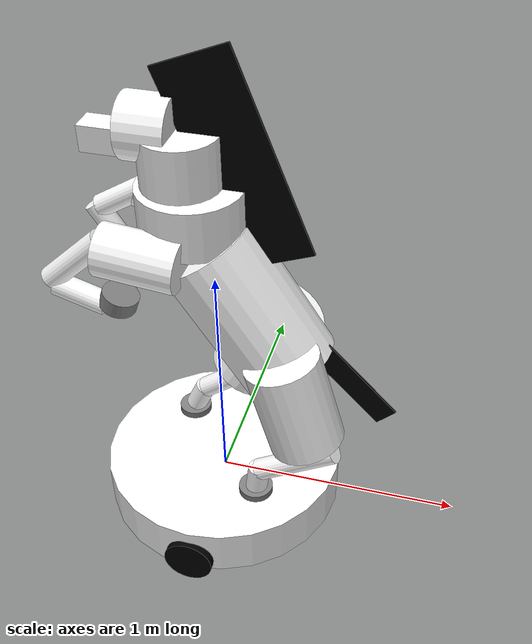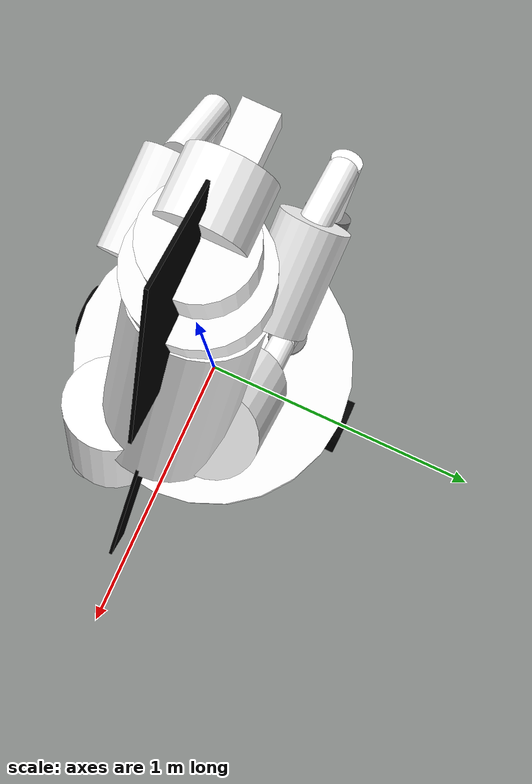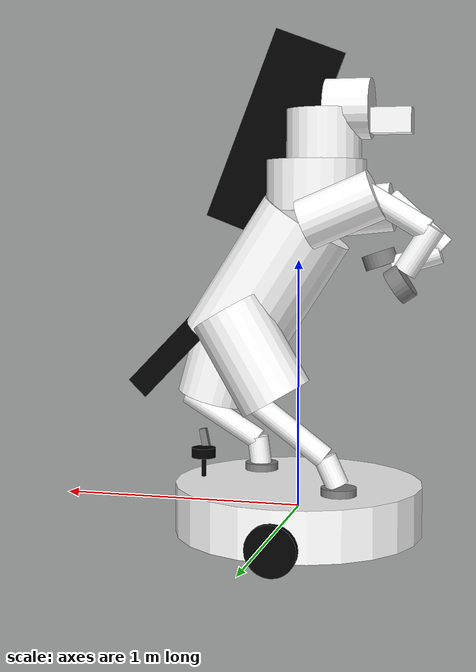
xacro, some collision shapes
<?xml version="1.0" ?>
<robot name='robot' xmlns:xacro="http://ros.org/wiki/xacro">

    <xacro:include filename="$(find sensors)/urdf/gazebo.urdf.xacro" />
    <xacro:include filename="$(find sensors)/urdf/lidar.urdf.xacro" />
    <xacro:include filename="$(find sensors)/urdf/depth.urdf.xacro" />

<!-- Define robot color -->
  <material name="grey">
    <color rgba="0.5 0.5 0.5 1"/>
  </material>

  <material name="white">
    <color rgba="1 1 1 1"/>
  </material>

  <material name="black">
    <color rgba="0 0 0 1"/>
  </material>

  <!-- Robot Base -->
  <link name="base_link">
    <visual>
      <geometry>
        <cylinder radius="0.5" length="0.2"/>
      </geometry>
      <material name="white"/>
    </visual>

    <collision>
      <geometry>
        <cylinder radius="0.5" length="0.2"/>
      </geometry>
    </collision>

    <inertial>
      <mass value="2"/>
      <inertia ixx="0.13" ixy="0.0" ixz="0.0" iyy="0.13" iyz="0.0" izz="0.25"/>
    </inertial>
  </link>

  <!-- Robot Footprint -->
  <link name="base_footprint"/>

  <joint name="base_joint" type="fixed">
    <parent link="base_link"/>
    <child link="base_footprint"/>
    <origin xyz="0.0 0.0 -0.15" rpy="0 0 0"/>
  </joint>
  <!-- Horse -->

  <!--Legs-->

  <!-- Right  -->
  <!-- Hoof-->
  <link name="right_hoof">
    <visual>
      <origin xyz="0 0 0" rpy="1.57 0 0"/>
      <geometry>
          <cylinder radius="0.07" length="0.06"/>
      </geometry>
      <material name="grey"/>
    </visual>

   <collision>
     <origin xyz="0 0 0" rpy="1.57 0 0"/>
     <geometry>
          <cylinder radius="0.07" length="0.06"/>
     </geometry>
   </collision>
<!-- todo -->
   <inertial>
     <mass value="0.001"/>
     <inertia ixx="0.001" ixy="0.0" ixz="0.0" iyy="0.001" iyz="0.0" izz="0.002"/>
   </inertial>
  </link>

  <joint name="right_hoof_joint" type="fixed">
    <parent link="base_link"/>
    <child link="right_hoof"/>
    <origin xyz="-0.2 0.2 0.1" rpy="1.57 0 0"/>
    <axis xyz="0 0 0"/>
  </joint>

  <!-- foot-->
  <link name="right_foot">
    <visual>
      <origin xyz="0 0 0" rpy="1.57 0 0"/>
      <geometry>
          <cylinder radius="0.045" length="0.12"/>
      </geometry>
      <material name="white"/>
    </visual>

   <collision>
     <origin xyz="0 0 0" rpy="1.57 0 0"/>
     <geometry>
          <cylinder radius="0.045" length="0.12"/>
     </geometry>
   </collision>
<!-- todo -->
   <inertial>
     <mass value="0.001"/>
     <inertia ixx="0.001" ixy="0.0" ixz="0.0" iyy="0.001" iyz="0.0" izz="0.002"/>
   </inertial>
  </link>

  <joint name="right_foot_joint" type="fixed">
    <parent link="base_link"/>
    <child link="right_foot"/>
    <origin xyz="-0.17 0.2 0.19" rpy="2.0 0 1.57"/>
    <axis xyz="0 0 0"/>
  </joint>

  <!-- knee-->
  <link name="right_knee">
    <visual>
      <origin xyz="0 0 0" rpy="1.57 0 0"/>
      <geometry>
          <cylinder radius="0.045" length="0.36"/>
      </geometry>
      <material name="white"/>
    </visual>

   <collision>
     <origin xyz="0 0 0" rpy="1.57 0 0"/>
     <geometry>
          <cylinder radius="0.045" length="0.36"/>
     </geometry>
   </collision>
<!-- todo -->
   <inertial>
     <mass value="0.001"/>
     <inertia ixx="0.001" ixy="0.0" ixz="0.0" iyy="0.001" iyz="0.0" izz="0.002"/>
   </inertial>
  </link>

  <joint name="right_knee_joint" type="fixed">
    <parent link="base_link"/>
    <child link="right_knee"/>
    <origin xyz="0 0.2 0.35" rpy="2.5 0 1.57"/>
    <axis xyz="0 0 0"/>
  </joint>

  <!-- hip-->
  <link name="right_hip">
    <visual>
      <origin xyz="0 0 0" rpy="1.57 0 0"/>
      <geometry>
          <cylinder radius="0.15" length="0.4"/>
      </geometry>
      <material name="white"/>
    </visual>

   <collision>
     <origin xyz="0 0 0" rpy="1.57 0 0"/>
     <geometry>
          <cylinder radius="0.15" length="0.4"/>
     </geometry>
   </collision>
<!-- todo -->
   <inertial>
     <mass value="0.001"/>
     <inertia ixx="0.001" ixy="0.0" ixz="0.0" iyy="0.001" iyz="0.0" izz="0.002"/>
   </inertial>
  </link>

  <joint name="right_hip_joint" type="fixed">
    <parent link="base_link"/>
    <child link="right_hip"/>
    <origin xyz="0.16 0.15 0.63" rpy="2.1 0 1.57"/>
    <axis xyz="0 0 0"/>
  </joint>

  <!-- Left  -->
  <!-- Hoof-->
  <link name="left_hoof">
    <visual>
      <origin xyz="0 0 0" rpy="1.57 0 0"/>
      <geometry>
          <cylinder radius="0.07" length="0.06"/>
      </geometry>
      <material name="grey"/>
    </visual>

   <collision>
     <origin xyz="0 0 0" rpy="1.57 0 0"/>
     <geometry>
          <cylinder radius="0.07" length="0.06"/>
     </geometry>
   </collision>
<!-- todo -->
   <inertial>
     <mass value="0.001"/>
     <inertia ixx="0.001" ixy="0.0" ixz="0.0" iyy="0.001" iyz="0.0" izz="0.002"/>
   </inertial>
  </link>

  <joint name="left_hoof_joint" type="fixed">
    <parent link="base_link"/>
    <child link="left_hoof"/>
    <origin xyz="0.2 -0.2 0.1" rpy="1.57 0 0"/>
    <axis xyz="0 0 0"/>
  </joint>

  <!-- foot-->
  <link name="left_foot">
    <visual>
      <origin xyz="0 0 0" rpy="1.57 0 0"/>
      <geometry>
          <cylinder radius="0.045" length="0.12"/>
      </geometry>
      <material name="white"/>
    </visual>

   <collision>
     <origin xyz="0 0 0" rpy="1.57 0 0"/>
     <geometry>
          <cylinder radius="0.045" length="0.12"/>
     </geometry>
   </collision>
<!-- todo -->
   <inertial>
     <mass value="0.001"/>
     <inertia ixx="0.001" ixy="0.0" ixz="0.0" iyy="0.001" iyz="0.0" izz="0.002"/>
   </inertial>
  </link>

  <joint name="left_foot_joint" type="fixed">
    <parent link="base_link"/>
    <child link="left_foot"/>
    <origin xyz="0.21 -0.2 0.18" rpy="1.7 0 1.57"/>
    <axis xyz="0 0 0"/>
  </joint>

  <!-- knee-->
  <link name="left_knee">
    <visual>
      <origin xyz="0 0 0" rpy="1.57 0 0"/>
      <geometry>
          <cylinder radius="0.045" length="0.36"/>
      </geometry>
      <material name="white"/>
    </visual>

   <collision>
     <origin xyz="0 0 0" rpy="1.57 0 0"/>
     <geometry>
          <cylinder radius="0.045" length="0.36"/>
     </geometry>
   </collision>
<!-- todo -->
   <inertial>
     <mass value="0.001"/>
     <inertia ixx="0.001" ixy="0.0" ixz="0.0" iyy="0.001" iyz="0.0" izz="0.002"/>
   </inertial>
  </link>

  <joint name="left_knee_joint" type="fixed">
    <parent link="base_link"/>
    <child link="left_knee"/>
    <origin xyz="0.37 -0.2 0.32" rpy="2.6 0 1.57"/>
    <axis xyz="0 0 0"/>
  </joint>

  <!-- hip-->
  <link name="left_hip">
    <visual>
      <origin xyz="0 0 0" rpy="1.57 0 0"/>
      <geometry>
          <cylinder radius="0.15" length="0.4"/>
      </geometry>
      <material name="white"/>
    </visual>

   <collision>
     <origin xyz="0 0 0" rpy="1.57 0 0"/>
     <geometry>
          <cylinder radius="0.15" length="0.4"/>
     </geometry>
   </collision>
<!-- todo -->
   <inertial>
     <mass value="0.001"/>
     <inertia ixx="0.001" ixy="0.0" ixz="0.0" iyy="0.001" iyz="0.0" izz="0.002"/>
   </inertial>
  </link>

  <joint name="left_hip_joint" type="fixed">
    <parent link="base_link"/>
    <child link="left_hip"/>
    <origin xyz="0.35 -0.15 0.6" rpy="1.3 0 1.57"/>
    <axis xyz="0 0 0"/>
  </joint>

<!-- Body -->
  <link name="body">
    <visual>
      <origin xyz="0 0 0" rpy="1.57 0 0"/>
      <geometry>
          <cylinder radius="0.2" length="0.6"/>
      </geometry>
      <material name="white"/>
    </visual>

   <collision>
     <origin xyz="0 0 0" rpy="1.57 0 0"/>
     <geometry>
          <cylinder radius="0.2" length="0.6"/>
     </geometry>
   </collision>
<!-- todo -->
   <inertial>
     <mass value="0.001"/>
     <inertia ixx="0.001" ixy="0.0" ixz="0.0" iyy="0.001" iyz="0.0" izz="0.002"/>
   </inertial>
  </link>

  <joint name="body_joint" type="fixed">
    <parent link="base_link"/>
    <child link="body"/>
    <origin xyz="0.13 0 0.9" rpy="1.0 0 1.57"/>
    <axis xyz="0 0 0"/>
  </joint>

  <!--Hands-->

  <!-- Left  -->
  <!--Shoulder-->
  <link name="left_shoulder">
    <visual>
      <origin xyz="0 0 0" rpy="1.57 0 0"/>
      <geometry>
          <cylinder radius="0.1" length="0.3"/>
      </geometry>
      <material name="white"/>
    </visual>

   <collision>
     <origin xyz="0 0 0" rpy="1.57 0 0"/>
     <geometry>
          <cylinder radius="0.11" length="0.3"/>
     </geometry>
   </collision>
<!-- todo -->
   <inertial>
     <mass value="0.001"/>
     <inertia ixx="0.001" ixy="0.0" ixz="0.0" iyy="0.001" iyz="0.0" izz="0.002"/>
   </inertial>
  </link>

  <joint name="left_shoulder_joint" type="fixed">
    <parent link="base_link"/>
    <child link="left_shoulder"/>
    <origin xyz="-0.2 0.2 1.2" rpy="0.4 0 1.57"/>
    <axis xyz="0 0 0"/>
  </joint>

  <!-- arm-->
  <link name="left_arm">
    <visual>
      <origin xyz="0 0 0" rpy="1.57 0 0"/>
      <geometry>
          <cylinder radius="0.045" length="0.3"/>
      </geometry>
      <material name="white"/>
    </visual>

   <collision>
     <origin xyz="0 0 0" rpy="1.57 0 0"/>
     <geometry>
          <cylinder radius="0.045" length="0.3"/>
     </geometry>
   </collision>
<!-- todo -->
   <inertial>
     <mass value="0.001"/>
     <inertia ixx="0.001" ixy="0.0" ixz="0.0" iyy="0.001" iyz="0.0" izz="0.002"/>
   </inertial>
  </link>

  <joint name="left_arm_joint" type="fixed">
    <parent link="base_link"/>
    <child link="left_arm"/>
    <origin xyz="-0.4 0.2 1.2" rpy="2.6 0 1.57"/>
    <axis xyz="0 0 0"/>
  </joint>

  <!-- hand-->
  <link name="left_hand">
    <visual>
      <origin xyz="0 0 0" rpy="1.57 0 0"/>
      <geometry>
          <cylinder radius="0.045" length="0.2"/>
      </geometry>
      <material name="white"/>
    </visual>

   <collision>
     <origin xyz="0 0 0" rpy="1.57 0 0"/>
     <geometry>
          <cylinder radius="0.045" length="0.2"/>
     </geometry>
   </collision>
<!-- todo -->
   <inertial>
     <mass value="0.001"/>
     <inertia ixx="0.001" ixy="0.0" ixz="0.0" iyy="0.001" iyz="0.0" izz="0.002"/>
   </inertial>
  </link>

  <joint name="left_hand_joint" type="fixed">
    <parent link="base_link"/>
    <child link="left_hand"/>
    <origin xyz="-0.5 0.2 1.05" rpy="1.0 0 1.57"/>
    <axis xyz="0 0 0"/>
  </joint>

  <!-- finger-->
  <link name="left_finger">
    <visual>
      <origin xyz="0 0 0" rpy="1.57 0 0"/>
      <geometry>
          <cylinder radius="0.07" length="0.06"/>
      </geometry>
      <material name="grey"/>
    </visual>

   <collision>
     <origin xyz="0 0 0" rpy="1.57 0 0"/>
     <geometry>
          <cylinder radius="0.07" length="0.06"/>
     </geometry>
   </collision>
<!-- todo -->
   <inertial>
     <mass value="0.001"/>
     <inertia ixx="0.001" ixy="0.0" ixz="0.0" iyy="0.001" iyz="0.0" izz="0.002"/>
   </inertial>
  </link>

  <joint name="left_finger_joint" type="fixed">
    <parent link="base_link"/>
    <child link="left_finger"/>
    <origin xyz="-0.43 0.2 0.92" rpy="0.6 0 1.57"/>
    <axis xyz="0 0 0"/>
  </joint>

  <!-- Right  -->
  <!--Shoulder-->
  <link name="right_shoulder">
    <visual>
      <origin xyz="0 0 0" rpy="1.57 0 0"/>
      <geometry>
          <cylinder radius="0.1" length="0.3"/>
      </geometry>
      <material name="white"/>
    </visual>

   <collision>
     <origin xyz="0 0 0" rpy="1.57 0 0"/>
     <geometry>
          <cylinder radius="0.11" length="0.3"/>
     </geometry>
   </collision>
<!-- todo -->
   <inertial>
     <mass value="0.001"/>
     <inertia ixx="0.001" ixy="0.0" ixz="0.0" iyy="0.001" iyz="0.0" izz="0.002"/>
   </inertial>
  </link>

  <joint name="right_shoulder_joint" type="fixed">
    <parent link="base_link"/>
    <child link="right_shoulder"/>
    <origin xyz="-0.2 -0.2 1.2" rpy="0.1 0 1.57"/>
    <axis xyz="0 0 0"/>
  </joint>

  <!-- arm-->
  <link name="right_arm">
    <visual>
      <origin xyz="0 0 0" rpy="1.57 0 0"/>
      <geometry>
          <cylinder radius="0.045" length="0.3"/>
      </geometry>
      <material name="white"/>
    </visual>

   <collision>
     <origin xyz="0 0 0" rpy="1.57 0 0"/>
     <geometry>
          <cylinder radius="0.045" length="0.3"/>
     </geometry>
   </collision>
<!-- todo -->
   <inertial>
     <mass value="0.001"/>
     <inertia ixx="0.001" ixy="0.0" ixz="0.0" iyy="0.001" iyz="0.0" izz="0.002"/>
   </inertial>
  </link>

  <joint name="right_arm_joint" type="fixed">
    <parent link="base_link"/>
    <child link="right_arm"/>
    <origin xyz="-0.45 -0.2 1.15" rpy="2.4 0 1.57"/>
    <axis xyz="0 0 0"/>
  </joint>

  <!-- hand-->
  <link name="right_hand">
    <visual>
      <origin xyz="0 0 0" rpy="1.57 0 0"/>
      <geometry>
          <cylinder radius="0.045" length="0.2"/>
      </geometry>
      <material name="white"/>
    </visual>

   <collision>
     <origin xyz="0 0 0" rpy="1.57 0 0"/>
     <geometry>
          <cylinder radius="0.045" length="0.2"/>
     </geometry>
   </collision>
<!-- todo -->
   <inertial>
     <mass value="0.001"/>
     <inertia ixx="0.001" ixy="0.0" ixz="0.0" iyy="0.001" iyz="0.0" izz="0.002"/>
   </inertial>
  </link>

  <joint name="right_hand_joint" type="fixed">
    <parent link="base_link"/>
    <child link="right_hand"/>
    <origin xyz="-0.45 -0.2 1.0" rpy="0.3 0 1.57"/>
    <axis xyz="0 0 0"/>
  </joint>

  <!-- finger-->
  <link name="right_finger">
    <visual>
      <origin xyz="0 0 0" rpy="1.57 0 0"/>
      <geometry>
          <cylinder radius="0.07" length="0.06"/>
      </geometry>
      <material name="grey"/>
    </visual>

   <collision>
     <origin xyz="0 0 0" rpy="1.57 0 0"/>
     <geometry>
          <cylinder radius="0.07" length="0.06"/>
     </geometry>
   </collision>
<!-- todo -->
   <inertial>
     <mass value="0.001"/>
     <inertia ixx="0.001" ixy="0.0" ixz="0.0" iyy="0.001" iyz="0.0" izz="0.002"/>
   </inertial>
  </link>

  <joint name="right_finger_joint" type="fixed">
    <parent link="base_link"/>
    <child link="right_finger"/>
    <origin xyz="-0.3 -0.2 1.0" rpy="1.9 0 1.57"/>
    <axis xyz="0 0 0"/>
  </joint>

<!-- Neck -->
  <link name="neck">
    <visual>
      <origin xyz="0 0 0" rpy="1.57 0 0"/>
      <geometry>
          <cylinder radius="0.2" length="0.2"/>
      </geometry>
      <material name="white"/>
    </visual>

   <collision>
     <origin xyz="0 0 0" rpy="1.57 0 0"/>
     <geometry>
          <cylinder radius="0.2" length="0.2"/>
     </geometry>
   </collision>
<!-- todo -->
   <inertial>
     <mass value="0.001"/>
     <inertia ixx="0.001" ixy="0.0" ixz="0.0" iyy="0.001" iyz="0.0" izz="0.002"/>
   </inertial>
  </link>

  <joint name="neck_joint" type="fixed">
    <parent link="base_link"/>
    <child link="neck"/>
    <origin xyz="-0.07 0 1.3" rpy="1.57 0 1.57"/>
    <axis xyz="0 0 0"/>
  </joint>
<!-- neckup -->
  <link name="neckup">
    <visual>
      <origin xyz="0 0 0" rpy="1.57 0 0"/>
      <geometry>
          <cylinder radius="0.15" length="0.2"/>
      </geometry>
      <material name="white"/>
    </visual>

   <collision>
     <origin xyz="0 0 0" rpy="1.57 0 0"/>
     <geometry>
          <cylinder radius="0.2" length="0.2"/>
     </geometry>
   </collision>
<!-- todo -->
   <inertial>
     <mass value="0.001"/>
     <inertia ixx="0.001" ixy="0.0" ixz="0.0" iyy="0.001" iyz="0.0" izz="0.002"/>
   </inertial>
  </link>

  <joint name="neckup_joint" type="fixed">
    <parent link="base_link"/>
    <child link="neckup"/>
    <origin xyz="-0.1 0 1.5" rpy="1.57 0 1.57"/>
    <axis xyz="0 0 0"/>
  </joint>

<!-- Head -->
  <link name="cheeks">
    <visual>
      <origin xyz="0 0 0" rpy="1.57 0 0"/>
      <geometry>
          <cylinder radius="0.12" length="0.18"/>
      </geometry>
      <material name="white"/>
    </visual>

   <collision>
     <origin xyz="0 0 0" rpy="1.57 0 0"/>
     <geometry>
          <cylinder radius="0.12" length="0.18"/>
     </geometry>
   </collision>
<!-- todo -->
   <inertial>
     <mass value="0.001"/>
     <inertia ixx="0.001" ixy="0.0" ixz="0.0" iyy="0.001" iyz="0.0" izz="0.002"/>
   </inertial>
  </link>

  <joint name="cheeks_joint" type="fixed">
    <parent link="base_link"/>
    <child link="cheeks"/>
    <origin xyz="-0.2 0 1.6" rpy="0 0 1.57"/>
    <axis xyz="0 0 0"/>
  </joint>

  <!-- Smile -->
  <link name="smile">
    <visual>
      <origin xyz="0 0 0" rpy="1.57 0 0"/>
      <geometry>
          <box size = "0.1 0.1 0.2"/>
      </geometry>
      <material name="white"/>
    </visual>

   <collision>
     <origin xyz="0 0 0" rpy="1.57 0 0"/>
     <geometry>
          <box size = "0.25 0.25 0.3"/>
     </geometry>
   </collision>
<!-- todo -->
   <inertial>
     <mass value="0.001"/>
     <inertia ixx="0.001" ixy="0.0" ixz="0.0" iyy="0.001" iyz="0.0" izz="0.002"/>
   </inertial>
  </link>

  <joint name="smile_joint" type="fixed">
    <parent link="base_link"/>
    <child link="smile"/>
    <origin xyz="-0.35 0 1.55" rpy="0 0 1.57"/>
    <axis xyz="0 0 0"/>
  </joint>

<!-- hair -->
  <link name="hair">
    <visual>
      <origin xyz="0 0 0" rpy="0 0 0"/>
      <geometry>
          <box size = "0.8 0.01 0.3"/>
      </geometry>
      <material name="black"/>
    </visual>

   <collision>
     <origin xyz="0 0 0" rpy="0 0 0"/>
     <geometry>
          <box size = "0.8 0.01 0.3"/>
     </geometry>
   </collision>
<!-- todo -->
   <inertial>
     <mass value="0.001"/>
     <inertia ixx="0.001" ixy="0.0" ixz="0.0" iyy="0.001" iyz="0.0" izz="0.002"/>
   </inertial>
  </link>

  <joint name="hair_joint" type="fixed">
    <parent link="base_link"/>
    <child link="hair"/>
    <origin xyz="0.1 0 1.5" rpy="0 1.2 0"/>
    <axis xyz="0 0 0"/>
  </joint>

<!-- tail -->
  <link name="tail">
    <visual>
      <origin xyz="0 0 0" rpy="0 0 0"/>
      <geometry>
          <box size = "0.4 0.01 0.1"/>
      </geometry>
      <material name="black"/>
    </visual>

   <collision>
     <origin xyz="0 0 0" rpy="0 0 0"/>
     <geometry>
          <box size = "0.4 0.01 0.1"/>
     </geometry>
   </collision>
<!-- todo -->
   <inertial>
     <mass value="0.001"/>
     <inertia ixx="0.001" ixy="0.0" ixz="0.0" iyy="0.001" iyz="0.0" izz="0.002"/>
   </inertial>
  </link>

  <joint name="tail_joint" type="fixed">
    <parent link="base_link"/>
    <child link="tail"/>
    <origin xyz="0.55 0 0.6" rpy="0 0.8 0"/>
    <axis xyz="0 0 0"/>
  </joint>

  <!-- Wheels -->
  <link name="drivewhl_l_link">
    <visual>
      <origin xyz="0 0 0" rpy="1.57 0 0"/>
      <geometry>
          <cylinder radius="0.1" length="0.04"/>
      </geometry>
      <material name="black"/>
    </visual>

   <collision>
     <origin xyz="0 0 0" rpy="1.57 0 0"/>
     <geometry>
       <cylinder radius="0.1" length="0.04"/>
     </geometry>
   </collision>

   <inertial>
     <mass value="0.4"/>
     <inertia ixx="0.001" ixy="0.0" ixz="0.0" iyy="0.001" iyz="0.0" izz="0.002"/>
   </inertial>
  </link>

  <joint name="drivewhl_l_joint" type="continuous">
    <parent link="base_link"/>
    <child link="drivewhl_l_link"/>
    <origin xyz="0 0.5 -0.05" rpy="0 0 0"/>
    <axis xyz="0 1 0"/>
  </joint>

  <link name="drivewhl_r_link">
    <visual>
      <origin xyz="0 0 0" rpy="1.57 0 0"/>
      <geometry>
          <cylinder radius="0.1" length="0.04"/>
      </geometry>
      <material name="black"/>
    </visual>

   <collision>
     <origin xyz="0 0 0" rpy="1.57 0 0"/>
     <geometry>
       <cylinder radius="0.1" length="0.04"/>
     </geometry>
   </collision>

   <inertial>
     <mass value="0.4"/>
     <inertia ixx="0.001" ixy="0.0" ixz="0.0" iyy="0.001" iyz="0.0" izz="0.002"/>
   </inertial>
  </link>

  <joint name="drivewhl_r_joint" type="continuous">
    <parent link="base_link"/>
    <child link="drivewhl_r_link"/>
    <origin xyz="0 -0.5 -0.05" rpy="0 0 0"/>
    <axis xyz="0 1 0"/>
  </joint>

  <!-- Caster Wheel -->
  <link name="front_caster">
    <visual>
      <geometry>
        <sphere radius="0.05"/>
      </geometry>
      <material name="grey"/>
    </visual>

    <collision>
      <geometry>
        <sphere radius="0.05"/>
      </geometry>
    </collision>

    <inertial>
      <mass value="1"/>
      <inertia ixx="0.002" ixy="0.0" ixz="0.0" iyy="0.002" iyz="0.0" izz="0.002"/>
    </inertial>
  </link>

  <joint name="caster_joint" type="fixed">
    <parent link="base_link"/>
    <child link="front_caster"/>
    <origin xyz="0.4 0.0 -0.1" rpy="0 0 0"/>
  </joint>
</robot>

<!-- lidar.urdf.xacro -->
<robot xmlns:xacro="http://www.ros.org/wiki/xacro">

    <joint name="laser_joint" type="fixed">
        <parent link="base_link"/>
        <child link="laser_frame"/>
        <origin xyz="0.4 0 0.2" rpy="0 0 0"/>
    </joint>

    <link name="laser_frame">
        <visual>
            <geometry>
                <cylinder radius="0.05" length="0.04"/>
            </geometry>
            <material name="black"/>
        </visual>
        <visual>
            <origin xyz="0 0 -0.05"/>
            <geometry>
                <cylinder radius="0.01" length="0.1"/>
            </geometry>
            <material name="black"/>
        </visual>
        <collision>
            <geometry>
                <cylinder radius="0.05" length="0.04"/>
            </geometry>
        </collision>
        <inertial>
            <origin xyz="0 0 0" rpy="0 0 0"/>
            <mass value="0.1" />
            <inertia ixx="${(1/12) * 0.1 * (3*0.05*0.05 + 0.04*0.04)}" ixy="0.0" ixz="0.0"
                     iyy="${(1/12) * 0.1 * (3*0.05*0.05 + 0.04*0.04)}" iyz="0.0"
                     izz="${(1/2) * 0.1 * (0.05*0.05)}" />
        </inertial>
    </link>

    <gazebo reference="laser_frame">
        <material>Gazebo/Black</material>

        <sensor name='laser_sensor_frame' type='gpu_lidar'>"
            <gz_frame_id>robot/laser_frame</gz_frame_id>
            <pose> 0 0 0 0 0 0 </pose>
            <visualize>true</visualize>
            <always_on>true</always_on>
            <update_rate>10</update_rate>
            <ray>
                <scan>
                    <horizontal>
                        <samples>360</samples>
                        <min_angle>-3.14</min_angle>
                        <max_angle>3.14</max_angle>
                    </horizontal>
                </scan>
                <range>
                    <min>0.3</min>
                    <max>12</max>
                </range>
                <noise>
                    <type>gaussian</type>
                    <mean>0.0</mean>
                    <stddev>0.007</stddev>
                </noise>
            </ray>
        </sensor>
    </gazebo>
</robot>

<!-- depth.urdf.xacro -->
<robot xmlns:xacro="http://www.ros.org/wiki/xacro">

    <xacro:property name="M_PI" value="3.1415926535897931" />

    <joint name="depth_joint" type="fixed">
        <parent link="base_link"/>
        <child link="depth_frame"/>
        <origin xyz="0.4 0 0.23" rpy="0 0.2 0"/>
    </joint>

    <material name="aluminum">
      <color rgba="0.5 0.5 0.5 1"/>
    </material>

    <link name="depth_frame">
        <visual>
            <origin xyz="0.00465 -0.0475 0" rpy="${M_PI/2} 0 ${M_PI/2}"/>
            <geometry>
                <mesh filename="file://$(find robot_description)/urdf/d455.stl" scale="0.001 0.001 0.001"/>
                <!--box size="0.026 0.124 0.029"/-->
            </geometry>
            <material name="aluminum"/>
        </visual>
        <collision>
            <origin xyz="0.00465 -0.0475 0" rpy="${M_PI/2} 0 ${M_PI/2}"/>
            <geometry>
                <box size="0.026 0.124 0.029"/>
            </geometry>
        </collision>
        <inertial>
            <origin xyz="0 0 0" rpy="0 0 0"/>
            <mass value="0.116" />
            <inertia ixx="${(1/12) * 0.116 * (0.026*0.026+0.029*0.029)}" ixy="0.0" ixz="0.0"
                     iyy="${(1/12) * 0.116 * (0.124*0.124+0.029*0.029)}" iyz="0.0"
                     izz="${(1/12) * 0.116 * (0.124*0.124+0.026*0.026)}" />
        </inertial>
    </link>

    <gazebo reference="depth_frame">
        <sensor name='depth_sensor_frame' type='depth_camera'>"
            <gz_frame_id>robot/depth_frame</gz_frame_id>
            <pose> 0 0 0 0 0 0 </pose>
            <always_on>true</always_on>
            <update_rate>10</update_rate>
            <camera>
                <horizontal_fov>1.51843645</horizontal_fov>
                <image>
                    <width>848</width>
                    <height>480</height>
                    <format>R_FLOAT32</format>
                </image>
                <clip>
                    <near>0.1</near>
                    <far>10</far>
                </clip>
                <lens>
                    <intrinsics>
                    <fx>421.61578369140625</fx>
                    <fy>421.61578369140625</fy>
                    <cx>422.2854309082031</cx>
                    <cy>236.57237243652344</cy>
                    <s>0</s>
                    </intrinsics>
                </lens>
                <noise>
                    <type>gaussian</type>
                    <mean>0.0</mean>
                    <stddev>0.007</stddev>
                </noise>
            </camera>
        </sensor>
        <sensor name="color_sensor_frame" type="camera">
            <gz_frame_id>robot/depth_frame</gz_frame_id>
            <pose>0 0 0 0 0 0</pose>
            <update_rate>30</update_rate>
            <always_on>true</always_on>
            <camera>
                <horizontal_fov>1.20427718</horizontal_fov>
                <image>
                    <width>848</width>
                    <height>480</height>
                </image>
                <clip>
                    <near>0.1</near>
                    <far>50</far>
                </clip>
                <lens>
                    <intrinsics>
                    <fx>615.9603271484375</fx>
                    <fy>616.227294921875</fy>
                    <cx>419.83026123046875</cx>
                    <cy>245.1431427001953</cy>
                    <s>0</s>
                    </intrinsics>
                </lens>
            </camera>
        </sensor>
    </gazebo>
</robot>
